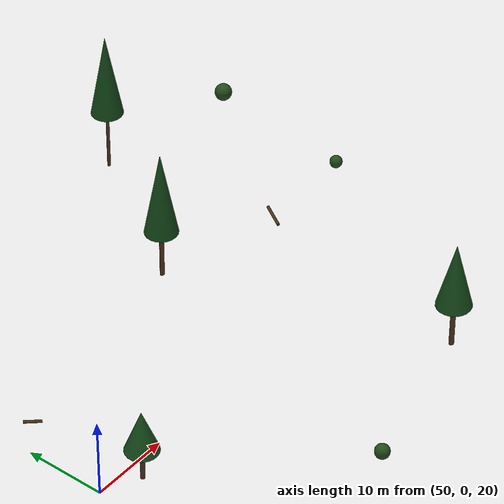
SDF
<sdf version="1.9">
 <world name="blue_mountains">
  <model name="spawn_tree_012">
   <static>true</static>
   <pose>48.5 -7.5 27.84 0 0 6.11</pose>
   <link name="trunk">
    <pose>0 0 2.4 0 0 0</pose>
    <collision name="c">
     <geometry><cylinder><radius>0.26</radius><length>4.8</length></cylinder></geometry>
    </collision>
    <visual name="v">
     <geometry><cylinder><radius>0.26</radius><length>4.8</length></cylinder></geometry>
     <material><ambient>0.30 0.20 0.12 1</ambient><diffuse>0.35 0.23 0.14 1</diffuse></material>
    </visual>
   </link>
   <link name="canopy">
    <pose>0 0 6.5 0 0 0</pose>
    <collision name="c"><geometry><cone><radius>1.92</radius><length>5.1</length></cone></geometry></collision>
    <visual name="v">
     <geometry><cone><radius>1.92</radius><length>5.1</length></cone></geometry>
     <material><ambient>0.08 0.28 0.10 1</ambient><diffuse>0.10 0.34 0.12 1</diffuse></material>
    </visual>
   </link>
  </model>
  <model name="spawn_tree_023">
   <static>true</static>
   <pose>68.9 -31.0 45.10 0 0 0.12</pose>
   <link name="trunk">
    <pose>0 0 3.15 0 0 0</pose>
    <collision name="c">
     <geometry><cylinder><radius>0.27</radius><length>6.3</length></cylinder></geometry>
    </collision>
    <visual name="v">
     <geometry><cylinder><radius>0.27</radius><length>6.3</length></cylinder></geometry>
     <material><ambient>0.30 0.20 0.12 1</ambient><diffuse>0.35 0.23 0.14 1</diffuse></material>
    </visual>
   </link>
   <link name="canopy">
    <pose>0 0 8.766666666666666 0 0 0</pose>
    <collision name="c"><geometry><cone><radius>1.87</radius><length>7.4</length></cone></geometry></collision>
    <visual name="v">
     <geometry><cone><radius>1.87</radius><length>7.4</length></cone></geometry>
     <material><ambient>0.08 0.28 0.10 1</ambient><diffuse>0.10 0.34 0.12 1</diffuse></material>
    </visual>
   </link>
  </model>
  <model name="spawn_tree_025">
   <static>true</static>
   <pose>65.6 3.9 38.23 0 0 3.55</pose>
   <link name="trunk">
    <pose>0 0 3.75 0 0 0</pose>
    <collision name="c">
     <geometry><cylinder><radius>0.25</radius><length>7.5</length></cylinder></geometry>
    </collision>
    <visual name="v">
     <geometry><cylinder><radius>0.25</radius><length>7.5</length></cylinder></geometry>
     <material><ambient>0.30 0.20 0.12 1</ambient><diffuse>0.35 0.23 0.14 1</diffuse></material>
    </visual>
   </link>
   <link name="canopy">
    <pose>0 0 10.833333333333334 0 0 0</pose>
    <collision name="c"><geometry><cone><radius>1.88</radius><length>10.0</length></cone></geometry></collision>
    <visual name="v">
     <geometry><cone><radius>1.88</radius><length>10.0</length></cone></geometry>
     <material><ambient>0.08 0.28 0.10 1</ambient><diffuse>0.10 0.34 0.12 1</diffuse></material>
    </visual>
   </link>
  </model>
  <model name="spawn_tree_035">
   <static>true</static>
   <pose>72.9 17.5 42.05 0 0 0.13</pose>
   <link name="trunk">
    <pose>0 0 4.4 0 0 0</pose>
    <collision name="c">
     <geometry><cylinder><radius>0.18</radius><length>8.8</length></cylinder></geometry>
    </collision>
    <visual name="v">
     <geometry><cylinder><radius>0.18</radius><length>8.8</length></cylinder></geometry>
     <material><ambient>0.30 0.20 0.12 1</ambient><diffuse>0.35 0.23 0.14 1</diffuse></material>
    </visual>
   </link>
   <link name="canopy">
    <pose>0 0 12.033333333333333 0 0 0</pose>
    <collision name="c"><geometry><cone><radius>1.8</radius><length>9.7</length></cone></geometry></collision>
    <visual name="v">
     <geometry><cone><radius>1.8</radius><length>9.7</length></cone></geometry>
     <material><ambient>0.08 0.28 0.10 1</ambient><diffuse>0.10 0.34 0.12 1</diffuse></material>
    </visual>
   </link>
  </model>
  <model name="spawn_bush_002">
   <static>true</static>
   <pose>56.2 -32.0 40.29 0 0 4.72</pose>
   <link name="foliage">
    <collision name="c"><geometry><sphere><radius>0.82</radius></sphere></geometry></collision>
    <visual name="v">
     <geometry><sphere><radius>0.82</radius></sphere></geometry>
     <material><ambient>0.10 0.24 0.08 1</ambient><diffuse>0.14 0.30 0.10 1</diffuse></material>
    </visual>
   </link>
  </model>
  <model name="spawn_bush_008">
   <static>true</static>
   <pose>85.0 11.1 48.0 0 0 4.5</pose>
   <link name="foliage">
    <collision name="c"><geometry><sphere><radius>0.96</radius></sphere></geometry></collision>
    <visual name="v">
     <geometry><sphere><radius>0.96</radius></sphere></geometry>
     <material><ambient>0.10 0.24 0.08 1</ambient><diffuse>0.14 0.30 0.10 1</diffuse></material>
    </visual>
   </link>
  </model>
  <model name="spawn_bush_010">
   <static>true</static>
   <pose>72.5 -29.8 47.01 0 0 2.81</pose>
   <link name="foliage">
    <collision name="c"><geometry><sphere><radius>0.77</radius></sphere></geometry></collision>
    <visual name="v">
     <geometry><sphere><radius>0.77</radius></sphere></geometry>
     <material><ambient>0.10 0.24 0.08 1</ambient><diffuse>0.14 0.30 0.10 1</diffuse></material>
    </visual>
   </link>
  </model>
  <model name="spawn_bush_019">
   <static>true</static>
   <pose>83.6 -5.5 47.07 0 0 5.09</pose>
   <link name="foliage">
    <collision name="c"><geometry><sphere><radius>0.7</radius></sphere></geometry></collision>
    <visual name="v">
     <geometry><sphere><radius>0.7</radius></sphere></geometry>
     <material><ambient>0.10 0.24 0.08 1</ambient><diffuse>0.14 0.30 0.10 1</diffuse></material>
    </visual>
   </link>
  </model>
  <model name="spawn_log_005">
   <static>true</static>
   <pose>49.9 9.2 25.11 1.5708 0 0.74</pose>
   <link name="log">
    <collision name="c">
     <geometry><cylinder><radius>0.17</radius><length>2.05</length></cylinder></geometry>
    </collision>
    <visual name="v">
     <geometry><cylinder><radius>0.17</radius><length>2.05</length></cylinder></geometry>
     <material><ambient>0.22 0.15 0.09 1</ambient><diffuse>0.28 0.19 0.11 1</diffuse></material>
    </visual>
   </link>
  </model>
  <model name="spawn_log_017">
   <static>true</static>
   <pose>75.8 -3.1 43.31 1.5708 0 5.72</pose>
   <link name="log">
    <collision name="c">
     <geometry><cylinder><radius>0.16</radius><length>3.25</length></cylinder></geometry>
    </collision>
    <visual name="v">
     <geometry><cylinder><radius>0.16</radius><length>3.25</length></cylinder></geometry>
     <material><ambient>0.22 0.15 0.09 1</ambient><diffuse>0.28 0.19 0.11 1</diffuse></material>
    </visual>
   </link>
  </model>
 </world>
</sdf>
